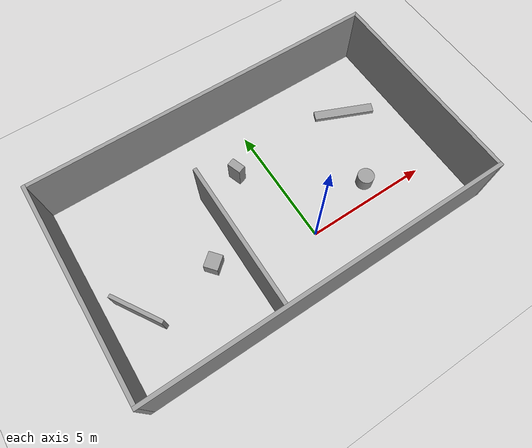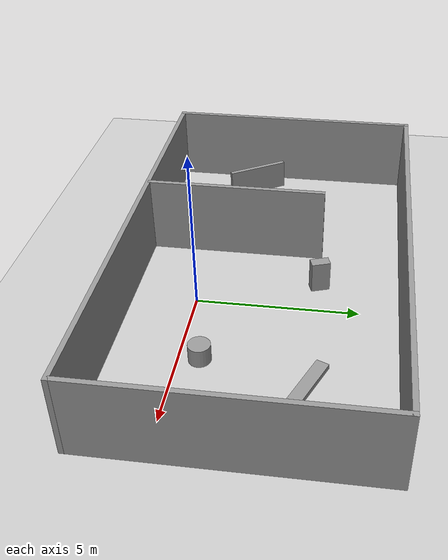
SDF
<sdf version="1.7">
 <world name="default">
  <light name="sun" type="directional">
   <pose>0 0 10 0 -0 0</pose>
   <diffuse>0.8 0.8 0.8 1</diffuse>
   <specular>0.2 0.2 0.2 1</specular>
   <attenuation>
    <range>1000</range>
    <constant>0.9</constant>
    <linear>0.01</linear>
    <quadratic>0.001</quadratic>
   </attenuation>
   <direction>-0.5 0.1 -0.9</direction>
   <spot><inner_angle>0</inner_angle><outer_angle>0</outer_angle><falloff>0</falloff></spot>
  </light>
  <model name="ground_plane">
   <static>1</static>
   <link name="link">
    <collision name="collision">
     <geometry><plane><normal>0 0 1</normal><size>100 100</size></plane></geometry>
     <surface>
      <contact><collide_bitmask>65535</collide_bitmask></contact>
      <friction><ode><mu>100</mu><mu2>50</mu2></ode></friction>
     </surface>
    </collision>
    <visual name="visual">
     <cast_shadows>0</cast_shadows>
     <geometry><plane><normal>0 0 1</normal><size>100 100</size></plane></geometry>
     <material>
      <script><uri>file://media/materials/scripts/gazebo.material</uri><name>Gazebo/Grey</name></script>
     </material>
    </visual>
   </link>
  </model>
  <gravity>0 0 -9.8</gravity>
  <magnetic_field>6e-06 2.3e-05 -4.2e-05</magnetic_field>
  <atmosphere type="adiabatic"/>
  <physics type="ode">
   <max_step_size>0.001</max_step_size>
   <real_time_factor>1</real_time_factor>
   <real_time_update_rate>1000</real_time_update_rate>
  </physics>
  <scene><ambient>0.4 0.4 0.4 1</ambient><background>0.7 0.7 0.7 1</background><shadows>1</shadows></scene>
  <spherical_coordinates>
   <surface_model>EARTH_WGS84</surface_model>
   <latitude_deg>0</latitude_deg>
   <longitude_deg>0</longitude_deg>
   <elevation>0</elevation>
   <heading_deg>0</heading_deg>
  </spherical_coordinates>
  <model name="demo_room">
   <pose>-0.922836 2.10019 0 0 -0 0</pose>
   <link name="Wall_1">
    <collision name="Wall_1_Collision">
     <geometry><box><size>14.402 0.15 2.5</size></box></geometry>
     <pose>0 0 1.25 0 -0 0</pose>
    </collision>
    <visual name="Wall_1_Visual">
     <pose>0 0 1.25 0 -0 0</pose>
     <geometry><box><size>14.402 0.15 2.5</size></box></geometry>
     <material>
      <script><uri>file://media/materials/scripts/gazebo.material</uri><name>Gazebo/Grey</name></script>
      <ambient>1 1 1 1</ambient>
     </material>
     <meta><layer>0</layer></meta>
    </visual>
    <pose>0.048836 4.17481 0 0 -0 0</pose>
   </link>
   <link name="Wall_2">
    <collision name="Wall_2_Collision">
     <geometry><box><size>8.5 0.15 2.5</size></box></geometry>
     <pose>0 0 1.25 0 -0 0</pose>
    </collision>
    <visual name="Wall_2_Visual">
     <pose>0 0 1.25 0 -0 0</pose>
     <geometry><box><size>8.5 0.15 2.5</size></box></geometry>
     <material>
      <script><uri>file://media/materials/scripts/gazebo.material</uri><name>Gazebo/Grey</name></script>
      <ambient>1 1 1 1</ambient>
     </material>
     <meta><layer>0</layer></meta>
    </visual>
    <pose>7.17492 -6.3e-05 0 0 -0 -1.57078</pose>
   </link>
   <link name="Wall_3">
    <collision name="Wall_3_Collision">
     <geometry><box><size>14.5 0.15 2.5</size></box></geometry>
     <pose>0 0 1.25 0 -0 0</pose>
    </collision>
    <visual name="Wall_3_Visual">
     <pose>0 0 1.25 0 -0 0</pose>
     <geometry><box><size>14.5 0.15 2.5</size></box></geometry>
     <material>
      <script><uri>file://media/materials/scripts/gazebo.material</uri><name>Gazebo/Grey</name></script>
      <ambient>1 1 1 1</ambient>
     </material>
     <meta><layer>0</layer></meta>
    </visual>
    <pose>-0 -4.17494 0 0 -0 3.14159</pose>
   </link>
   <link name="Wall_4">
    <collision name="Wall_4_Collision">
     <geometry><box><size>8.5 0.15 2.5</size></box></geometry>
     <pose>0 0 1.25 0 -0 0</pose>
    </collision>
    <visual name="Wall_4_Visual">
     <pose>0 0 1.25 0 -0 0</pose>
     <geometry><box><size>8.5 0.15 2.5</size></box></geometry>
     <material>
      <script><uri>file://media/materials/scripts/gazebo.material</uri><name>Gazebo/Grey</name></script>
      <ambient>1 1 1 1</ambient>
     </material>
     <meta><layer>0</layer></meta>
    </visual>
    <pose>-7.175 6.4e-05 0 0 -0 1.5708</pose>
   </link>
   <static>1</static>
  </model>
  <model name="partition">
   <pose>-1.45113 0.797019 0 0 -0 0</pose>
   <link name="Wall_2">
    <collision name="Wall_2_Collision">
     <geometry><box><size>5.75 0.15 2.5</size></box></geometry>
     <pose>0 0 1.25 0 -0 0</pose>
    </collision>
    <visual name="Wall_2_Visual">
     <pose>0 0 1.25 0 -0 0</pose>
     <geometry><box><size>5.75 0.15 2.5</size></box></geometry>
     <material>
      <script><uri>file://media/materials/scripts/gazebo.material</uri><name>Gazebo/Grey</name></script>
      <ambient>1 1 1 1</ambient>
     </material>
     <meta><layer>0</layer></meta>
    </visual>
    <pose>-1.37613 0 0 0 -0 -1.5708</pose>
   </link>
   <static>1</static>
  </model>
  <model name="obstracle">
   <link name="link_0">
    <inertial>
     <mass>0.309578</mass>
     <inertia>
      <ixx>0.142843</ixx>
      <ixy>0</ixy>
      <ixz>0</ixz>
      <iyy>0.0263431</iyy>
      <iyz>0</iyz>
      <izz>0.117589</izz>
     </inertia>
    </inertial>
    <pose>-5.88678 -1.05915 0 0 -0 0.557394</pose>
    <visual name="visual">
     <geometry><box><size>0.145341 2.13001 1</size></box></geometry>
     <material>
      <lighting>1</lighting>
      <script><uri>file://media/materials/scripts/gazebo.material</uri><name>Gazebo/Grey</name></script>
      <shader type="pixel"/>
     </material>
    </visual>
    <collision name="collision">
     <geometry><box><size>0.145341 2.13001 1</size></box></geometry>
     <surface>
      <friction>
       <ode><mu>1</mu><mu2>1</mu2><fdir1>0 0 0</fdir1><slip1>0</slip1><slip2>0</slip2></ode>
       <torsional>
        <coefficient>1</coefficient>
        <patch_radius>0</patch_radius>
        <surface_radius>0</surface_radius>
        <use_patch_radius>1</use_patch_radius>
        <ode><slip>0</slip></ode>
       </torsional>
      </friction>
      <bounce><restitution_coefficient>0</restitution_coefficient><threshold>1e+06</threshold></bounce>
      <contact>
       <collide_without_contact>0</collide_without_contact>
       <collide_without_contact_bitmask>1</collide_without_contact_bitmask>
       <collide_bitmask>1</collide_bitmask>
       <ode>
        <soft_cfm>0</soft_cfm>
        <soft_erp>0.2</soft_erp>
        <kp>1e+13</kp>
        <kd>1</kd>
        <max_vel>0.01</max_vel>
        <min_depth>0</min_depth>
       </ode>
       <bullet>
        <split_impulse>1</split_impulse>
        <split_impulse_penetration_threshold>-0.01</split_impulse_penetration_threshold>
        <soft_cfm>0</soft_cfm>
        <soft_erp>0.2</soft_erp>
        <kp>1e+13</kp>
        <kd>1</kd>
       </bullet>
      </contact>
     </surface>
    </collision>
   </link>
   <link name="link_1">
    <inertial>
     <mass>0.193072</mass>
     <inertia>
      <ixx>0.0102739</ixx>
      <ixy>0</ixy>
      <ixz>0</ixz>
      <iyy>0.011248</iyy>
      <iyz>0</iyz>
      <izz>0.0108141</izz>
     </inertia>
    </inertial>
    <pose>-2.81848 -0.994122 0 0 -0 0.691408</pose>
    <visual name="visual">
     <geometry><box><size>0.605255 0.552985 0.576854</size></box></geometry>
     <material>
      <lighting>1</lighting>
      <script><uri>file://media/materials/scripts/gazebo.material</uri><name>Gazebo/Grey</name></script>
      <shader type="pixel"/>
     </material>
    </visual>
    <collision name="collision">
     <geometry><box><size>0.605255 0.552985 0.576854</size></box></geometry>
     <surface>
      <friction>
       <ode><mu>1</mu><mu2>1</mu2><fdir1>0 0 0</fdir1><slip1>0</slip1><slip2>0</slip2></ode>
       <torsional>
        <coefficient>1</coefficient>
        <patch_radius>0</patch_radius>
        <surface_radius>0</surface_radius>
        <use_patch_radius>1</use_patch_radius>
        <ode><slip>0</slip></ode>
       </torsional>
      </friction>
      <bounce><restitution_coefficient>0</restitution_coefficient><threshold>1e+06</threshold></bounce>
      <contact>
       <collide_without_contact>0</collide_without_contact>
       <collide_without_contact_bitmask>1</collide_without_contact_bitmask>
       <collide_bitmask>1</collide_bitmask>
       <ode>
        <soft_cfm>0</soft_cfm>
        <soft_erp>0.2</soft_erp>
        <kp>1e+13</kp>
        <kd>1</kd>
        <max_vel>0.01</max_vel>
        <min_depth>0</min_depth>
       </ode>
       <bullet>
        <split_impulse>1</split_impulse>
        <split_impulse_penetration_threshold>-0.01</split_impulse_penetration_threshold>
        <soft_cfm>0</soft_cfm>
        <soft_erp>0.2</soft_erp>
        <kp>1e+13</kp>
        <kd>1</kd>
       </bullet>
      </contact>
     </surface>
    </collision>
   </link>
   <link name="link_2">
    <inertial>
     <mass>0.14411</mass>
     <inertia>
      <ixx>0.00204884</ixx>
      <ixy>0</ixy>
      <ixz>0</ixz>
      <iyy>0.0716839</iyy>
      <iyz>0</iyz>
      <izz>0.0731615</izz>
     </inertia>
    </inertial>
    <pose>5.00849 1.635 0 0 0 -0.401079</pose>
    <visual name="visual">
     <geometry><box><size>2.4383 0.383175 0.154218</size></box></geometry>
     <material>
      <lighting>1</lighting>
      <script><uri>file://media/materials/scripts/gazebo.material</uri><name>Gazebo/Grey</name></script>
      <shader type="pixel"/>
     </material>
    </visual>
    <collision name="collision">
     <geometry><box><size>2.4383 0.383175 0.154218</size></box></geometry>
     <surface>
      <friction>
       <ode><mu>1</mu><mu2>1</mu2><fdir1>0 0 0</fdir1><slip1>0</slip1><slip2>0</slip2></ode>
       <torsional>
        <coefficient>1</coefficient>
        <patch_radius>0</patch_radius>
        <surface_radius>0</surface_radius>
        <use_patch_radius>1</use_patch_radius>
        <ode><slip>0</slip></ode>
       </torsional>
      </friction>
      <bounce><restitution_coefficient>0</restitution_coefficient><threshold>1e+06</threshold></bounce>
      <contact>
       <collide_without_contact>0</collide_without_contact>
       <collide_without_contact_bitmask>1</collide_without_contact_bitmask>
       <collide_bitmask>1</collide_bitmask>
       <ode>
        <soft_cfm>0</soft_cfm>
        <soft_erp>0.2</soft_erp>
        <kp>1e+13</kp>
        <kd>1</kd>
        <max_vel>0.01</max_vel>
        <min_depth>0</min_depth>
       </ode>
       <bullet>
        <split_impulse>1</split_impulse>
        <split_impulse_penetration_threshold>-0.01</split_impulse_penetration_threshold>
        <soft_cfm>0</soft_cfm>
        <soft_erp>0.2</soft_erp>
        <kp>1e+13</kp>
        <kd>1</kd>
       </bullet>
      </contact>
     </surface>
    </collision>
   </link>
   <link name="link_3">
    <inertial>
     <mass>0.240977</mass>
     <inertia>
      <ixx>0.01285</ixx>
      <ixy>0</ixy>
      <ixz>0</ixz>
      <iyy>0.01285</iyy>
      <iyz>0</iyz>
      <izz>0.0128164</izz>
     </inertia>
    </inertial>
    <pose>3.84693 -1.29791 0 0 -0 0</pose>
    <visual name="visual">
     <geometry><cylinder><radius>0.326145</radius><length>0.566379</length></cylinder></geometry>
     <material>
      <lighting>1</lighting>
      <script><uri>file://media/materials/scripts/gazebo.material</uri><name>Gazebo/Grey</name></script>
      <shader type="pixel"/>
     </material>
    </visual>
    <collision name="collision">
     <geometry><cylinder><radius>0.326145</radius><length>0.566379</length></cylinder></geometry>
     <surface>
      <friction>
       <ode><mu>1</mu><mu2>1</mu2><fdir1>0 0 0</fdir1><slip1>0</slip1><slip2>0</slip2></ode>
       <torsional>
        <coefficient>1</coefficient>
        <patch_radius>0</patch_radius>
        <surface_radius>0</surface_radius>
        <use_patch_radius>1</use_patch_radius>
        <ode><slip>0</slip></ode>
       </torsional>
      </friction>
      <bounce><restitution_coefficient>0</restitution_coefficient><threshold>1e+06</threshold></bounce>
      <contact>
       <collide_without_contact>0</collide_without_contact>
       <collide_without_contact_bitmask>1</collide_without_contact_bitmask>
       <collide_bitmask>1</collide_bitmask>
       <ode>
        <soft_cfm>0</soft_cfm>
        <soft_erp>0.2</soft_erp>
        <kp>1e+13</kp>
        <kd>1</kd>
        <max_vel>0.01</max_vel>
        <min_depth>0</min_depth>
       </ode>
       <bullet>
        <split_impulse>1</split_impulse>
        <split_impulse_penetration_threshold>-0.01</split_impulse_penetration_threshold>
        <soft_cfm>0</soft_cfm>
        <soft_erp>0.2</soft_erp>
        <kp>1e+13</kp>
        <kd>1</kd>
       </bullet>
      </contact>
     </surface>
    </collision>
   </link>
   <link name="link_5">
    <inertial>
     <mass>0.194853</mass>
     <inertia>
      <ixx>0.0217449</ixx>
      <ixy>0</ixy>
      <ixz>0</ixz>
      <iyy>0.0180555</iyy>
      <iyz>0</iyz>
      <izz>0.00732492</izz>
     </inertia>
    </inertial>
    <pose>-0.150151 1.71618 0 0 -0 0.327564</pose>
    <visual name="visual">
     <geometry><box><size>0.334584 0.582372 1</size></box></geometry>
     <material>
      <lighting>1</lighting>
      <script><uri>file://media/materials/scripts/gazebo.material</uri><name>Gazebo/Grey</name></script>
      <shader type="pixel"/>
     </material>
    </visual>
    <collision name="collision">
     <geometry><box><size>0.334584 0.582372 1</size></box></geometry>
     <surface>
      <friction>
       <ode><mu>1</mu><mu2>1</mu2><fdir1>0 0 0</fdir1><slip1>0</slip1><slip2>0</slip2></ode>
       <torsional>
        <coefficient>1</coefficient>
        <patch_radius>0</patch_radius>
        <surface_radius>0</surface_radius>
        <use_patch_radius>1</use_patch_radius>
        <ode><slip>0</slip></ode>
       </torsional>
      </friction>
      <bounce><restitution_coefficient>0</restitution_coefficient><threshold>1e+06</threshold></bounce>
      <contact>
       <collide_without_contact>0</collide_without_contact>
       <collide_without_contact_bitmask>1</collide_without_contact_bitmask>
       <collide_bitmask>1</collide_bitmask>
       <ode>
        <soft_cfm>0</soft_cfm>
        <soft_erp>0.2</soft_erp>
        <kp>1e+13</kp>
        <kd>1</kd>
        <max_vel>0.01</max_vel>
        <min_depth>0</min_depth>
       </ode>
       <bullet>
        <split_impulse>1</split_impulse>
        <split_impulse_penetration_threshold>-0.01</split_impulse_penetration_threshold>
        <soft_cfm>0</soft_cfm>
        <soft_erp>0.2</soft_erp>
        <kp>1e+13</kp>
        <kd>1</kd>
       </bullet>
      </contact>
     </surface>
    </collision>
   </link>
   <static>0</static>
   <pose>-1.03499 1.97996 0.499989 3e-06 2e-06 5.5e-05</pose>
  </model>
 </world>
</sdf>
